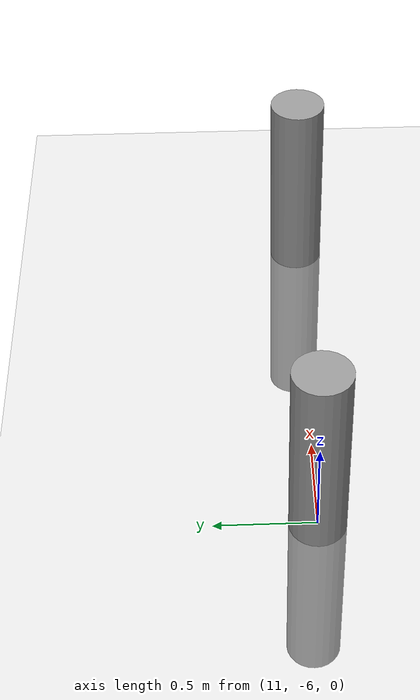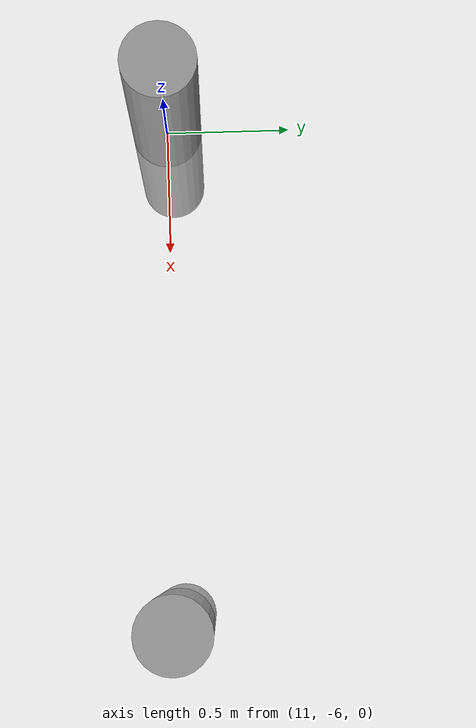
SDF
<sdf version="1.6">
 <world name="default">
  <model name="ground_plane">
   <static>1</static>
   <link name="link">
    <collision name="collision">
     <geometry><plane><normal>0 0 1</normal><size>100 100</size></plane></geometry>
     <surface><friction><ode><mu>100</mu><mu2>50</mu2></ode></friction></surface>
    </collision>
    <visual name="visual">
     <cast_shadows>0</cast_shadows>
     <geometry><plane><normal>0 0 1</normal><size>100 100</size></plane></geometry>
     <material>
      <script><uri>file://media/materials/scripts/gazebo.material</uri><name>Gazebo/Grey</name></script>
     </material>
    </visual>
   </link>
  </model>
  <model name="my_cylinder014_clone_46">
   <pose>13 -6 0 0 -0 0</pose>
   <link name="my_cylinder014::link">
    <inertial>
     <mass>1</mass>
     <inertia><ixx>0.145833</ixx><ixy>0</ixy><ixz>0</ixz><iyy>0.145833</iyy><iyz>0</iyz><izz>0.125</izz></inertia>
    </inertial>
    <visual name="visual">
     <geometry><cylinder><radius>0.14</radius><length>2</length></cylinder></geometry>
     <material>
      <script><name>Gazebo/Grey</name><uri>file://media/materials/scripts/gazebo.material</uri></script>
      <ambient>0.3 0.3 0.3 1</ambient>
      <diffuse>0.7 0.7 0.7 1</diffuse>
      <specular>1 0.01 0.01 1</specular>
      <emissive>0 0 0 1</emissive>
      <shader type="vertex"><normal_map>__default__</normal_map></shader>
     </material>
    </visual>
    <collision name="collision">
     <geometry><cylinder><radius>0.14</radius><length>2</length></cylinder></geometry>
     <surface>
      <friction>
       <ode><mu>1</mu><mu2>1</mu2><fdir1>0 0 0</fdir1><slip1>0</slip1><slip2>0</slip2></ode>
       <torsional>
        <coefficient>1</coefficient>
        <patch_radius>0</patch_radius>
        <surface_radius>0</surface_radius>
        <use_patch_radius>1</use_patch_radius>
        <ode><slip>0</slip></ode>
       </torsional>
      </friction>
      <bounce><restitution_coefficient>0</restitution_coefficient><threshold>1e+06</threshold></bounce>
      <contact>
       <collide_without_contact>0</collide_without_contact>
       <collide_without_contact_bitmask>1</collide_without_contact_bitmask>
       <collide_bitmask>1</collide_bitmask>
       <ode>
        <soft_cfm>0</soft_cfm>
        <soft_erp>0.2</soft_erp>
        <kp>1e+13</kp>
        <kd>1</kd>
        <max_vel>0.01</max_vel>
        <min_depth>0</min_depth>
       </ode>
       <bullet>
        <split_impulse>1</split_impulse>
        <split_impulse_penetration_threshold>-0.01</split_impulse_penetration_threshold>
        <soft_cfm>0</soft_cfm>
        <soft_erp>0.2</soft_erp>
        <kp>1e+13</kp>
        <kd>1</kd>
       </bullet>
      </contact>
     </surface>
    </collision>
   </link>
   <static>1</static>
  </model>
  <model name="my_cylinder014_clone_45">
   <pose>11 -6 0 0 -0 0</pose>
   <link name="my_cylinder014::link">
    <inertial>
     <mass>1</mass>
     <inertia><ixx>0.145833</ixx><ixy>0</ixy><ixz>0</ixz><iyy>0.145833</iyy><iyz>0</iyz><izz>0.125</izz></inertia>
    </inertial>
    <visual name="visual">
     <geometry><cylinder><radius>0.14</radius><length>2</length></cylinder></geometry>
     <material>
      <script><name>Gazebo/Grey</name><uri>file://media/materials/scripts/gazebo.material</uri></script>
      <ambient>0.3 0.3 0.3 1</ambient>
      <diffuse>0.7 0.7 0.7 1</diffuse>
      <specular>1 0.01 0.01 1</specular>
      <emissive>0 0 0 1</emissive>
      <shader type="vertex"><normal_map>__default__</normal_map></shader>
     </material>
    </visual>
    <collision name="collision">
     <geometry><cylinder><radius>0.14</radius><length>2</length></cylinder></geometry>
     <surface>
      <friction>
       <ode><mu>1</mu><mu2>1</mu2><fdir1>0 0 0</fdir1><slip1>0</slip1><slip2>0</slip2></ode>
       <torsional>
        <coefficient>1</coefficient>
        <patch_radius>0</patch_radius>
        <surface_radius>0</surface_radius>
        <use_patch_radius>1</use_patch_radius>
        <ode><slip>0</slip></ode>
       </torsional>
      </friction>
      <bounce><restitution_coefficient>0</restitution_coefficient><threshold>1e+06</threshold></bounce>
      <contact>
       <collide_without_contact>0</collide_without_contact>
       <collide_without_contact_bitmask>1</collide_without_contact_bitmask>
       <collide_bitmask>1</collide_bitmask>
       <ode>
        <soft_cfm>0</soft_cfm>
        <soft_erp>0.2</soft_erp>
        <kp>1e+13</kp>
        <kd>1</kd>
        <max_vel>0.01</max_vel>
        <min_depth>0</min_depth>
       </ode>
       <bullet>
        <split_impulse>1</split_impulse>
        <split_impulse_penetration_threshold>-0.01</split_impulse_penetration_threshold>
        <soft_cfm>0</soft_cfm>
        <soft_erp>0.2</soft_erp>
        <kp>1e+13</kp>
        <kd>1</kd>
       </bullet>
      </contact>
     </surface>
    </collision>
   </link>
   <static>1</static>
  </model>
  <model name="my_cylinder014_clone_45">
   <pose>11 -6 0 0 -0 0</pose>
   <link name="my_cylinder014::link">
    <inertial>
     <mass>1</mass>
     <inertia><ixx>0.145833</ixx><ixy>0</ixy><ixz>0</ixz><iyy>0.145833</iyy><iyz>0</iyz><izz>0.125</izz></inertia>
    </inertial>
    <visual name="visual">
     <geometry><cylinder><radius>0.14</radius><length>2</length></cylinder></geometry>
     <material>
      <script><name>Gazebo/Grey</name><uri>file://media/materials/scripts/gazebo.material</uri></script>
      <ambient>0.3 0.3 0.3 1</ambient>
      <diffuse>0.7 0.7 0.7 1</diffuse>
      <specular>1 0.01 0.01 1</specular>
      <emissive>0 0 0 1</emissive>
      <shader type="vertex"><normal_map>__default__</normal_map></shader>
     </material>
    </visual>
    <collision name="collision">
     <geometry><cylinder><radius>0.14</radius><length>2</length></cylinder></geometry>
     <surface>
      <friction>
       <ode><mu>1</mu><mu2>1</mu2><fdir1>0 0 0</fdir1><slip1>0</slip1><slip2>0</slip2></ode>
       <torsional>
        <coefficient>1</coefficient>
        <patch_radius>0</patch_radius>
        <surface_radius>0</surface_radius>
        <use_patch_radius>1</use_patch_radius>
        <ode><slip>0</slip></ode>
       </torsional>
      </friction>
      <bounce><restitution_coefficient>0</restitution_coefficient><threshold>1e+06</threshold></bounce>
      <contact>
       <collide_without_contact>0</collide_without_contact>
       <collide_without_contact_bitmask>1</collide_without_contact_bitmask>
       <collide_bitmask>1</collide_bitmask>
       <ode>
        <soft_cfm>0</soft_cfm>
        <soft_erp>0.2</soft_erp>
        <kp>1e+13</kp>
        <kd>1</kd>
        <max_vel>0.01</max_vel>
        <min_depth>0</min_depth>
       </ode>
       <bullet>
        <split_impulse>1</split_impulse>
        <split_impulse_penetration_threshold>-0.01</split_impulse_penetration_threshold>
        <soft_cfm>0</soft_cfm>
        <soft_erp>0.2</soft_erp>
        <kp>1e+13</kp>
        <kd>1</kd>
       </bullet>
      </contact>
     </surface>
    </collision>
   </link>
   <static>1</static>
  </model>
 </world>
</sdf>
